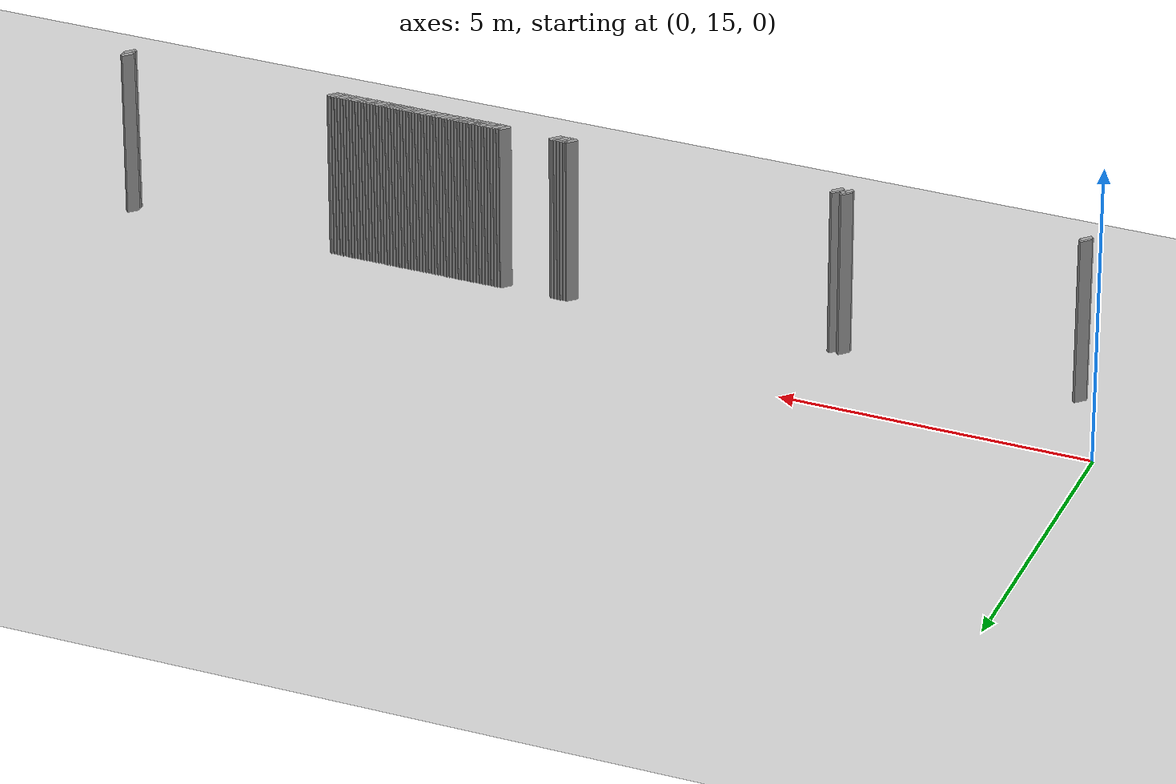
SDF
<sdf version="1.5">
 <world name="default">
  <include><uri>model://ground_plane</uri></include>
  <include><uri>model://sun</uri></include>
  <model name="grey_wall_1183">
   <static>1</static>
   <link name="link">
    <pose>9.0 13.450000000000001  1.4 0 0 -0.7853981633974483</pose>
    <collision name="collision">
     <geometry><box><size>0.07071067811865576 .2  2.8</size></box></geometry>
    </collision>
    <visual name="visual">
     <cast_shadows>0</cast_shadows>
     <geometry><box><size>0.07071067811865576 .2  2.8</size></box></geometry>
     <material>
      <script>
       <uri>model://grey_wall/materials/scripts</uri>
       <uri>model://grey_wall/materials/textures</uri>
       <name>vrc/grey_wall</name>
      </script>
     </material>
    </visual>
   </link>
  </model>
  <model name="grey_wall_1184">
   <static>1</static>
   <link name="link">
    <pose>9.05 13.450000000000001  1.4 0 0 -0.7853981633974483</pose>
    <collision name="collision">
     <geometry><box><size>0.07071067811865576 .2  2.8</size></box></geometry>
    </collision>
    <visual name="visual">
     <cast_shadows>0</cast_shadows>
     <geometry><box><size>0.07071067811865576 .2  2.8</size></box></geometry>
     <material>
      <script>
       <uri>model://grey_wall/materials/scripts</uri>
       <uri>model://grey_wall/materials/textures</uri>
       <name>vrc/grey_wall</name>
      </script>
     </material>
    </visual>
   </link>
  </model>
  <model name="grey_wall_1185">
   <static>1</static>
   <link name="link">
    <pose>9.1 13.450000000000001  1.4 0 0 -0.7853981633974483</pose>
    <collision name="collision">
     <geometry><box><size>0.07071067811865576 .2  2.8</size></box></geometry>
    </collision>
    <visual name="visual">
     <cast_shadows>0</cast_shadows>
     <geometry><box><size>0.07071067811865576 .2  2.8</size></box></geometry>
     <material>
      <script>
       <uri>model://grey_wall/materials/scripts</uri>
       <uri>model://grey_wall/materials/textures</uri>
       <name>vrc/grey_wall</name>
      </script>
     </material>
    </visual>
   </link>
  </model>
  <model name="grey_wall_1186">
   <static>1</static>
   <link name="link">
    <pose>9.15 13.450000000000001  1.4 0 0 -0.7853981633974483</pose>
    <collision name="collision">
     <geometry><box><size>0.07071067811865576 .2  2.8</size></box></geometry>
    </collision>
    <visual name="visual">
     <cast_shadows>0</cast_shadows>
     <geometry><box><size>0.07071067811865576 .2  2.8</size></box></geometry>
     <material>
      <script>
       <uri>model://grey_wall/materials/scripts</uri>
       <uri>model://grey_wall/materials/textures</uri>
       <name>vrc/grey_wall</name>
      </script>
     </material>
    </visual>
   </link>
  </model>
  <model name="grey_wall_1187">
   <static>1</static>
   <link name="link">
    <pose>9.200000000000001 13.450000000000001  1.4 0 0 -0.7853981633974483</pose>
    <collision name="collision">
     <geometry><box><size>0.07071067811865576 .2  2.8</size></box></geometry>
    </collision>
    <visual name="visual">
     <cast_shadows>0</cast_shadows>
     <geometry><box><size>0.07071067811865576 .2  2.8</size></box></geometry>
     <material>
      <script>
       <uri>model://grey_wall/materials/scripts</uri>
       <uri>model://grey_wall/materials/textures</uri>
       <name>vrc/grey_wall</name>
      </script>
     </material>
    </visual>
   </link>
  </model>
  <model name="grey_wall_1188">
   <static>1</static>
   <link name="link">
    <pose>9.25 13.450000000000001  1.4 0 0 -0.7853981633974483</pose>
    <collision name="collision">
     <geometry><box><size>0.07071067811865576 .2  2.8</size></box></geometry>
    </collision>
    <visual name="visual">
     <cast_shadows>0</cast_shadows>
     <geometry><box><size>0.07071067811865576 .2  2.8</size></box></geometry>
     <material>
      <script>
       <uri>model://grey_wall/materials/scripts</uri>
       <uri>model://grey_wall/materials/textures</uri>
       <name>vrc/grey_wall</name>
      </script>
     </material>
    </visual>
   </link>
  </model>
  <model name="grey_wall_1189">
   <static>1</static>
   <link name="link">
    <pose>10.100000000000001 13.450000000000001  1.4 0 0 -0.7853981633974483</pose>
    <collision name="collision">
     <geometry><box><size>0.07071067811865576 .2  2.8</size></box></geometry>
    </collision>
    <visual name="visual">
     <cast_shadows>0</cast_shadows>
     <geometry><box><size>0.07071067811865576 .2  2.8</size></box></geometry>
     <material>
      <script>
       <uri>model://grey_wall/materials/scripts</uri>
       <uri>model://grey_wall/materials/textures</uri>
       <name>vrc/grey_wall</name>
      </script>
     </material>
    </visual>
   </link>
  </model>
  <model name="grey_wall_1190">
   <static>1</static>
   <link name="link">
    <pose>10.15 13.450000000000001  1.4 0 0 -0.7853981633974483</pose>
    <collision name="collision">
     <geometry><box><size>0.07071067811865576 .2  2.8</size></box></geometry>
    </collision>
    <visual name="visual">
     <cast_shadows>0</cast_shadows>
     <geometry><box><size>0.07071067811865576 .2  2.8</size></box></geometry>
     <material>
      <script>
       <uri>model://grey_wall/materials/scripts</uri>
       <uri>model://grey_wall/materials/textures</uri>
       <name>vrc/grey_wall</name>
      </script>
     </material>
    </visual>
   </link>
  </model>
  <model name="grey_wall_1191">
   <static>1</static>
   <link name="link">
    <pose>10.200000000000001 13.450000000000001  1.4 0 0 -0.7853981633974483</pose>
    <collision name="collision">
     <geometry><box><size>0.07071067811865576 .2  2.8</size></box></geometry>
    </collision>
    <visual name="visual">
     <cast_shadows>0</cast_shadows>
     <geometry><box><size>0.07071067811865576 .2  2.8</size></box></geometry>
     <material>
      <script>
       <uri>model://grey_wall/materials/scripts</uri>
       <uri>model://grey_wall/materials/textures</uri>
       <name>vrc/grey_wall</name>
      </script>
     </material>
    </visual>
   </link>
  </model>
  <model name="grey_wall_1192">
   <static>1</static>
   <link name="link">
    <pose>10.25 13.450000000000001  1.4 0 0 -0.7853981633974483</pose>
    <collision name="collision">
     <geometry><box><size>0.07071067811865576 .2  2.8</size></box></geometry>
    </collision>
    <visual name="visual">
     <cast_shadows>0</cast_shadows>
     <geometry><box><size>0.07071067811865576 .2  2.8</size></box></geometry>
     <material>
      <script>
       <uri>model://grey_wall/materials/scripts</uri>
       <uri>model://grey_wall/materials/textures</uri>
       <name>vrc/grey_wall</name>
      </script>
     </material>
    </visual>
   </link>
  </model>
  <model name="grey_wall_1193">
   <static>1</static>
   <link name="link">
    <pose>10.3 13.450000000000001  1.4 0 0 -0.7853981633974483</pose>
    <collision name="collision">
     <geometry><box><size>0.07071067811865576 .2  2.8</size></box></geometry>
    </collision>
    <visual name="visual">
     <cast_shadows>0</cast_shadows>
     <geometry><box><size>0.07071067811865576 .2  2.8</size></box></geometry>
     <material>
      <script>
       <uri>model://grey_wall/materials/scripts</uri>
       <uri>model://grey_wall/materials/textures</uri>
       <name>vrc/grey_wall</name>
      </script>
     </material>
    </visual>
   </link>
  </model>
  <model name="grey_wall_1194">
   <static>1</static>
   <link name="link">
    <pose>10.350000000000001 13.450000000000001  1.4 0 0 -0.7853981633974483</pose>
    <collision name="collision">
     <geometry><box><size>0.07071067811865576 .2  2.8</size></box></geometry>
    </collision>
    <visual name="visual">
     <cast_shadows>0</cast_shadows>
     <geometry><box><size>0.07071067811865576 .2  2.8</size></box></geometry>
     <material>
      <script>
       <uri>model://grey_wall/materials/scripts</uri>
       <uri>model://grey_wall/materials/textures</uri>
       <name>vrc/grey_wall</name>
      </script>
     </material>
    </visual>
   </link>
  </model>
  <model name="grey_wall_1195">
   <static>1</static>
   <link name="link">
    <pose>10.4 13.450000000000001  1.4 0 0 -0.7853981633974483</pose>
    <collision name="collision">
     <geometry><box><size>0.07071067811865576 .2  2.8</size></box></geometry>
    </collision>
    <visual name="visual">
     <cast_shadows>0</cast_shadows>
     <geometry><box><size>0.07071067811865576 .2  2.8</size></box></geometry>
     <material>
      <script>
       <uri>model://grey_wall/materials/scripts</uri>
       <uri>model://grey_wall/materials/textures</uri>
       <name>vrc/grey_wall</name>
      </script>
     </material>
    </visual>
   </link>
  </model>
  <model name="grey_wall_1196">
   <static>1</static>
   <link name="link">
    <pose>10.450000000000001 13.450000000000001  1.4 0 0 -0.7853981633974483</pose>
    <collision name="collision">
     <geometry><box><size>0.07071067811865576 .2  2.8</size></box></geometry>
    </collision>
    <visual name="visual">
     <cast_shadows>0</cast_shadows>
     <geometry><box><size>0.07071067811865576 .2  2.8</size></box></geometry>
     <material>
      <script>
       <uri>model://grey_wall/materials/scripts</uri>
       <uri>model://grey_wall/materials/textures</uri>
       <name>vrc/grey_wall</name>
      </script>
     </material>
    </visual>
   </link>
  </model>
  <model name="grey_wall_1197">
   <static>1</static>
   <link name="link">
    <pose>10.5 13.450000000000001  1.4 0 0 -0.7853981633974483</pose>
    <collision name="collision">
     <geometry><box><size>0.07071067811865576 .2  2.8</size></box></geometry>
    </collision>
    <visual name="visual">
     <cast_shadows>0</cast_shadows>
     <geometry><box><size>0.07071067811865576 .2  2.8</size></box></geometry>
     <material>
      <script>
       <uri>model://grey_wall/materials/scripts</uri>
       <uri>model://grey_wall/materials/textures</uri>
       <name>vrc/grey_wall</name>
      </script>
     </material>
    </visual>
   </link>
  </model>
  <model name="grey_wall_1198">
   <static>1</static>
   <link name="link">
    <pose>10.55 13.450000000000001  1.4 0 0 -0.7853981633974483</pose>
    <collision name="collision">
     <geometry><box><size>0.07071067811865576 .2  2.8</size></box></geometry>
    </collision>
    <visual name="visual">
     <cast_shadows>0</cast_shadows>
     <geometry><box><size>0.07071067811865576 .2  2.8</size></box></geometry>
     <material>
      <script>
       <uri>model://grey_wall/materials/scripts</uri>
       <uri>model://grey_wall/materials/textures</uri>
       <name>vrc/grey_wall</name>
      </script>
     </material>
    </visual>
   </link>
  </model>
  <model name="grey_wall_1199">
   <static>1</static>
   <link name="link">
    <pose>10.600000000000001 13.450000000000001  1.4 0 0 -0.7853981633974483</pose>
    <collision name="collision">
     <geometry><box><size>0.07071067811865576 .2  2.8</size></box></geometry>
    </collision>
    <visual name="visual">
     <cast_shadows>0</cast_shadows>
     <geometry><box><size>0.07071067811865576 .2  2.8</size></box></geometry>
     <material>
      <script>
       <uri>model://grey_wall/materials/scripts</uri>
       <uri>model://grey_wall/materials/textures</uri>
       <name>vrc/grey_wall</name>
      </script>
     </material>
    </visual>
   </link>
  </model>
  <model name="grey_wall_1200">
   <static>1</static>
   <link name="link">
    <pose>10.65 13.450000000000001  1.4 0 0 -0.7853981633974483</pose>
    <collision name="collision">
     <geometry><box><size>0.07071067811865576 .2  2.8</size></box></geometry>
    </collision>
    <visual name="visual">
     <cast_shadows>0</cast_shadows>
     <geometry><box><size>0.07071067811865576 .2  2.8</size></box></geometry>
     <material>
      <script>
       <uri>model://grey_wall/materials/scripts</uri>
       <uri>model://grey_wall/materials/textures</uri>
       <name>vrc/grey_wall</name>
      </script>
     </material>
    </visual>
   </link>
  </model>
  <model name="grey_wall_1201">
   <static>1</static>
   <link name="link">
    <pose>10.700000000000001 13.450000000000001  1.4 0 0 -0.7853981633974483</pose>
    <collision name="collision">
     <geometry><box><size>0.07071067811865576 .2  2.8</size></box></geometry>
    </collision>
    <visual name="visual">
     <cast_shadows>0</cast_shadows>
     <geometry><box><size>0.07071067811865576 .2  2.8</size></box></geometry>
     <material>
      <script>
       <uri>model://grey_wall/materials/scripts</uri>
       <uri>model://grey_wall/materials/textures</uri>
       <name>vrc/grey_wall</name>
      </script>
     </material>
    </visual>
   </link>
  </model>
  <model name="grey_wall_1202">
   <static>1</static>
   <link name="link">
    <pose>10.75 13.450000000000001  1.4 0 0 -0.7853981633974483</pose>
    <collision name="collision">
     <geometry><box><size>0.07071067811865576 .2  2.8</size></box></geometry>
    </collision>
    <visual name="visual">
     <cast_shadows>0</cast_shadows>
     <geometry><box><size>0.07071067811865576 .2  2.8</size></box></geometry>
     <material>
      <script>
       <uri>model://grey_wall/materials/scripts</uri>
       <uri>model://grey_wall/materials/textures</uri>
       <name>vrc/grey_wall</name>
      </script>
     </material>
    </visual>
   </link>
  </model>
  <model name="grey_wall_1203">
   <static>1</static>
   <link name="link">
    <pose>10.8 13.450000000000001  1.4 0 0 -0.7853981633974483</pose>
    <collision name="collision">
     <geometry><box><size>0.07071067811865576 .2  2.8</size></box></geometry>
    </collision>
    <visual name="visual">
     <cast_shadows>0</cast_shadows>
     <geometry><box><size>0.07071067811865576 .2  2.8</size></box></geometry>
     <material>
      <script>
       <uri>model://grey_wall/materials/scripts</uri>
       <uri>model://grey_wall/materials/textures</uri>
       <name>vrc/grey_wall</name>
      </script>
     </material>
    </visual>
   </link>
  </model>
  <model name="grey_wall_1204">
   <static>1</static>
   <link name="link">
    <pose>10.850000000000001 13.450000000000001  1.4 0 0 -0.7853981633974483</pose>
    <collision name="collision">
     <geometry><box><size>0.07071067811865576 .2  2.8</size></box></geometry>
    </collision>
    <visual name="visual">
     <cast_shadows>0</cast_shadows>
     <geometry><box><size>0.07071067811865576 .2  2.8</size></box></geometry>
     <material>
      <script>
       <uri>model://grey_wall/materials/scripts</uri>
       <uri>model://grey_wall/materials/textures</uri>
       <name>vrc/grey_wall</name>
      </script>
     </material>
    </visual>
   </link>
  </model>
  <model name="grey_wall_1205">
   <static>1</static>
   <link name="link">
    <pose>10.9 13.450000000000001  1.4 0 0 -0.7853981633974483</pose>
    <collision name="collision">
     <geometry><box><size>0.07071067811865576 .2  2.8</size></box></geometry>
    </collision>
    <visual name="visual">
     <cast_shadows>0</cast_shadows>
     <geometry><box><size>0.07071067811865576 .2  2.8</size></box></geometry>
     <material>
      <script>
       <uri>model://grey_wall/materials/scripts</uri>
       <uri>model://grey_wall/materials/textures</uri>
       <name>vrc/grey_wall</name>
      </script>
     </material>
    </visual>
   </link>
  </model>
  <model name="grey_wall_1206">
   <static>1</static>
   <link name="link">
    <pose>10.950000000000001 13.450000000000001  1.4 0 0 -0.7853981633974483</pose>
    <collision name="collision">
     <geometry><box><size>0.07071067811865576 .2  2.8</size></box></geometry>
    </collision>
    <visual name="visual">
     <cast_shadows>0</cast_shadows>
     <geometry><box><size>0.07071067811865576 .2  2.8</size></box></geometry>
     <material>
      <script>
       <uri>model://grey_wall/materials/scripts</uri>
       <uri>model://grey_wall/materials/textures</uri>
       <name>vrc/grey_wall</name>
      </script>
     </material>
    </visual>
   </link>
  </model>
  <model name="grey_wall_1207">
   <static>1</static>
   <link name="link">
    <pose>11.0 13.450000000000001  1.4 0 0 -0.7853981633974483</pose>
    <collision name="collision">
     <geometry><box><size>0.07071067811865576 .2  2.8</size></box></geometry>
    </collision>
    <visual name="visual">
     <cast_shadows>0</cast_shadows>
     <geometry><box><size>0.07071067811865576 .2  2.8</size></box></geometry>
     <material>
      <script>
       <uri>model://grey_wall/materials/scripts</uri>
       <uri>model://grey_wall/materials/textures</uri>
       <name>vrc/grey_wall</name>
      </script>
     </material>
    </visual>
   </link>
  </model>
  <model name="grey_wall_1208">
   <static>1</static>
   <link name="link">
    <pose>11.05 13.450000000000001  1.4 0 0 -0.7853981633974483</pose>
    <collision name="collision">
     <geometry><box><size>0.07071067811865576 .2  2.8</size></box></geometry>
    </collision>
    <visual name="visual">
     <cast_shadows>0</cast_shadows>
     <geometry><box><size>0.07071067811865576 .2  2.8</size></box></geometry>
     <material>
      <script>
       <uri>model://grey_wall/materials/scripts</uri>
       <uri>model://grey_wall/materials/textures</uri>
       <name>vrc/grey_wall</name>
      </script>
     </material>
    </visual>
   </link>
  </model>
  <model name="grey_wall_1209">
   <static>1</static>
   <link name="link">
    <pose>11.100000000000001 13.450000000000001  1.4 0 0 -0.7853981633974483</pose>
    <collision name="collision">
     <geometry><box><size>0.07071067811865576 .2  2.8</size></box></geometry>
    </collision>
    <visual name="visual">
     <cast_shadows>0</cast_shadows>
     <geometry><box><size>0.07071067811865576 .2  2.8</size></box></geometry>
     <material>
      <script>
       <uri>model://grey_wall/materials/scripts</uri>
       <uri>model://grey_wall/materials/textures</uri>
       <name>vrc/grey_wall</name>
      </script>
     </material>
    </visual>
   </link>
  </model>
  <model name="grey_wall_1210">
   <static>1</static>
   <link name="link">
    <pose>11.15 13.450000000000001  1.4 0 0 -0.7853981633974483</pose>
    <collision name="collision">
     <geometry><box><size>0.07071067811865576 .2  2.8</size></box></geometry>
    </collision>
    <visual name="visual">
     <cast_shadows>0</cast_shadows>
     <geometry><box><size>0.07071067811865576 .2  2.8</size></box></geometry>
     <material>
      <script>
       <uri>model://grey_wall/materials/scripts</uri>
       <uri>model://grey_wall/materials/textures</uri>
       <name>vrc/grey_wall</name>
      </script>
     </material>
    </visual>
   </link>
  </model>
  <model name="grey_wall_1211">
   <static>1</static>
   <link name="link">
    <pose>11.200000000000001 13.450000000000001  1.4 0 0 -0.7853981633974483</pose>
    <collision name="collision">
     <geometry><box><size>0.07071067811865576 .2  2.8</size></box></geometry>
    </collision>
    <visual name="visual">
     <cast_shadows>0</cast_shadows>
     <geometry><box><size>0.07071067811865576 .2  2.8</size></box></geometry>
     <material>
      <script>
       <uri>model://grey_wall/materials/scripts</uri>
       <uri>model://grey_wall/materials/textures</uri>
       <name>vrc/grey_wall</name>
      </script>
     </material>
    </visual>
   </link>
  </model>
  <model name="grey_wall_1212">
   <static>1</static>
   <link name="link">
    <pose>11.25 13.450000000000001  1.4 0 0 -0.7853981633974483</pose>
    <collision name="collision">
     <geometry><box><size>0.07071067811865576 .2  2.8</size></box></geometry>
    </collision>
    <visual name="visual">
     <cast_shadows>0</cast_shadows>
     <geometry><box><size>0.07071067811865576 .2  2.8</size></box></geometry>
     <material>
      <script>
       <uri>model://grey_wall/materials/scripts</uri>
       <uri>model://grey_wall/materials/textures</uri>
       <name>vrc/grey_wall</name>
      </script>
     </material>
    </visual>
   </link>
  </model>
  <model name="grey_wall_1213">
   <static>1</static>
   <link name="link">
    <pose>11.3 13.450000000000001  1.4 0 0 -0.7853981633974483</pose>
    <collision name="collision">
     <geometry><box><size>0.07071067811865576 .2  2.8</size></box></geometry>
    </collision>
    <visual name="visual">
     <cast_shadows>0</cast_shadows>
     <geometry><box><size>0.07071067811865576 .2  2.8</size></box></geometry>
     <material>
      <script>
       <uri>model://grey_wall/materials/scripts</uri>
       <uri>model://grey_wall/materials/textures</uri>
       <name>vrc/grey_wall</name>
      </script>
     </material>
    </visual>
   </link>
  </model>
  <model name="grey_wall_1214">
   <static>1</static>
   <link name="link">
    <pose>11.350000000000001 13.450000000000001  1.4 0 0 -0.7853981633974483</pose>
    <collision name="collision">
     <geometry><box><size>0.07071067811865576 .2  2.8</size></box></geometry>
    </collision>
    <visual name="visual">
     <cast_shadows>0</cast_shadows>
     <geometry><box><size>0.07071067811865576 .2  2.8</size></box></geometry>
     <material>
      <script>
       <uri>model://grey_wall/materials/scripts</uri>
       <uri>model://grey_wall/materials/textures</uri>
       <name>vrc/grey_wall</name>
      </script>
     </material>
    </visual>
   </link>
  </model>
  <model name="grey_wall_1215">
   <static>1</static>
   <link name="link">
    <pose>11.4 13.450000000000001  1.4 0 0 -0.7853981633974483</pose>
    <collision name="collision">
     <geometry><box><size>0.07071067811865576 .2  2.8</size></box></geometry>
    </collision>
    <visual name="visual">
     <cast_shadows>0</cast_shadows>
     <geometry><box><size>0.07071067811865576 .2  2.8</size></box></geometry>
     <material>
      <script>
       <uri>model://grey_wall/materials/scripts</uri>
       <uri>model://grey_wall/materials/textures</uri>
       <name>vrc/grey_wall</name>
      </script>
     </material>
    </visual>
   </link>
  </model>
  <model name="grey_wall_1216">
   <static>1</static>
   <link name="link">
    <pose>11.450000000000001 13.450000000000001  1.4 0 0 -0.7853981633974483</pose>
    <collision name="collision">
     <geometry><box><size>0.07071067811865576 .2  2.8</size></box></geometry>
    </collision>
    <visual name="visual">
     <cast_shadows>0</cast_shadows>
     <geometry><box><size>0.07071067811865576 .2  2.8</size></box></geometry>
     <material>
      <script>
       <uri>model://grey_wall/materials/scripts</uri>
       <uri>model://grey_wall/materials/textures</uri>
       <name>vrc/grey_wall</name>
      </script>
     </material>
    </visual>
   </link>
  </model>
  <model name="grey_wall_1217">
   <static>1</static>
   <link name="link">
    <pose>11.5 13.450000000000001  1.4 0 0 -0.7853981633974483</pose>
    <collision name="collision">
     <geometry><box><size>0.07071067811865576 .2  2.8</size></box></geometry>
    </collision>
    <visual name="visual">
     <cast_shadows>0</cast_shadows>
     <geometry><box><size>0.07071067811865576 .2  2.8</size></box></geometry>
     <material>
      <script>
       <uri>model://grey_wall/materials/scripts</uri>
       <uri>model://grey_wall/materials/textures</uri>
       <name>vrc/grey_wall</name>
      </script>
     </material>
    </visual>
   </link>
  </model>
  <model name="grey_wall_1218">
   <static>1</static>
   <link name="link">
    <pose>11.55 13.450000000000001  1.4 0 0 -0.7853981633974483</pose>
    <collision name="collision">
     <geometry><box><size>0.07071067811865576 .2  2.8</size></box></geometry>
    </collision>
    <visual name="visual">
     <cast_shadows>0</cast_shadows>
     <geometry><box><size>0.07071067811865576 .2  2.8</size></box></geometry>
     <material>
      <script>
       <uri>model://grey_wall/materials/scripts</uri>
       <uri>model://grey_wall/materials/textures</uri>
       <name>vrc/grey_wall</name>
      </script>
     </material>
    </visual>
   </link>
  </model>
  <model name="grey_wall_1219">
   <static>1</static>
   <link name="link">
    <pose>11.600000000000001 13.450000000000001  1.4 0 0 -0.7853981633974483</pose>
    <collision name="collision">
     <geometry><box><size>0.07071067811865576 .2  2.8</size></box></geometry>
    </collision>
    <visual name="visual">
     <cast_shadows>0</cast_shadows>
     <geometry><box><size>0.07071067811865576 .2  2.8</size></box></geometry>
     <material>
      <script>
       <uri>model://grey_wall/materials/scripts</uri>
       <uri>model://grey_wall/materials/textures</uri>
       <name>vrc/grey_wall</name>
      </script>
     </material>
    </visual>
   </link>
  </model>
  <model name="grey_wall_1220">
   <static>1</static>
   <link name="link">
    <pose>11.65 13.450000000000001  1.4 0 0 -0.7853981633974483</pose>
    <collision name="collision">
     <geometry><box><size>0.07071067811865576 .2  2.8</size></box></geometry>
    </collision>
    <visual name="visual">
     <cast_shadows>0</cast_shadows>
     <geometry><box><size>0.07071067811865576 .2  2.8</size></box></geometry>
     <material>
      <script>
       <uri>model://grey_wall/materials/scripts</uri>
       <uri>model://grey_wall/materials/textures</uri>
       <name>vrc/grey_wall</name>
      </script>
     </material>
    </visual>
   </link>
  </model>
  <model name="grey_wall_1221">
   <static>1</static>
   <link name="link">
    <pose>11.700000000000001 13.450000000000001  1.4 0 0 -0.7853981633974483</pose>
    <collision name="collision">
     <geometry><box><size>0.07071067811865576 .2  2.8</size></box></geometry>
    </collision>
    <visual name="visual">
     <cast_shadows>0</cast_shadows>
     <geometry><box><size>0.07071067811865576 .2  2.8</size></box></geometry>
     <material>
      <script>
       <uri>model://grey_wall/materials/scripts</uri>
       <uri>model://grey_wall/materials/textures</uri>
       <name>vrc/grey_wall</name>
      </script>
     </material>
    </visual>
   </link>
  </model>
  <model name="grey_wall_1222">
   <static>1</static>
   <link name="link">
    <pose>11.75 13.450000000000001  1.4 0 0 -0.7853981633974483</pose>
    <collision name="collision">
     <geometry><box><size>0.07071067811865576 .2  2.8</size></box></geometry>
    </collision>
    <visual name="visual">
     <cast_shadows>0</cast_shadows>
     <geometry><box><size>0.07071067811865576 .2  2.8</size></box></geometry>
     <material>
      <script>
       <uri>model://grey_wall/materials/scripts</uri>
       <uri>model://grey_wall/materials/textures</uri>
       <name>vrc/grey_wall</name>
      </script>
     </material>
    </visual>
   </link>
  </model>
  <model name="grey_wall_1223">
   <static>1</static>
   <link name="link">
    <pose>11.8 13.450000000000001  1.4 0 0 -0.7853981633974483</pose>
    <collision name="collision">
     <geometry><box><size>0.07071067811865576 .2  2.8</size></box></geometry>
    </collision>
    <visual name="visual">
     <cast_shadows>0</cast_shadows>
     <geometry><box><size>0.07071067811865576 .2  2.8</size></box></geometry>
     <material>
      <script>
       <uri>model://grey_wall/materials/scripts</uri>
       <uri>model://grey_wall/materials/textures</uri>
       <name>vrc/grey_wall</name>
      </script>
     </material>
    </visual>
   </link>
  </model>
  <model name="grey_wall_1224">
   <static>1</static>
   <link name="link">
    <pose>11.850000000000001 13.450000000000001  1.4 0 0 -0.7853981633974483</pose>
    <collision name="collision">
     <geometry><box><size>0.07071067811865576 .2  2.8</size></box></geometry>
    </collision>
    <visual name="visual">
     <cast_shadows>0</cast_shadows>
     <geometry><box><size>0.07071067811865576 .2  2.8</size></box></geometry>
     <material>
      <script>
       <uri>model://grey_wall/materials/scripts</uri>
       <uri>model://grey_wall/materials/textures</uri>
       <name>vrc/grey_wall</name>
      </script>
     </material>
    </visual>
   </link>
  </model>
  <model name="grey_wall_1225">
   <static>1</static>
   <link name="link">
    <pose>11.9 13.450000000000001  1.4 0 0 -0.7853981633974483</pose>
    <collision name="collision">
     <geometry><box><size>0.07071067811865576 .2  2.8</size></box></geometry>
    </collision>
    <visual name="visual">
     <cast_shadows>0</cast_shadows>
     <geometry><box><size>0.07071067811865576 .2  2.8</size></box></geometry>
     <material>
      <script>
       <uri>model://grey_wall/materials/scripts</uri>
       <uri>model://grey_wall/materials/textures</uri>
       <name>vrc/grey_wall</name>
      </script>
     </material>
    </visual>
   </link>
  </model>
  <model name="grey_wall_1226">
   <static>1</static>
   <link name="link">
    <pose>11.950000000000001 13.450000000000001  1.4 0 0 -0.7853981633974483</pose>
    <collision name="collision">
     <geometry><box><size>0.07071067811865576 .2  2.8</size></box></geometry>
    </collision>
    <visual name="visual">
     <cast_shadows>0</cast_shadows>
     <geometry><box><size>0.07071067811865576 .2  2.8</size></box></geometry>
     <material>
      <script>
       <uri>model://grey_wall/materials/scripts</uri>
       <uri>model://grey_wall/materials/textures</uri>
       <name>vrc/grey_wall</name>
      </script>
     </material>
    </visual>
   </link>
  </model>
  <model name="grey_wall_1227">
   <static>1</static>
   <link name="link">
    <pose>12.0 13.450000000000001  1.4 0 0 -0.7853981633974483</pose>
    <collision name="collision">
     <geometry><box><size>0.07071067811865576 .2  2.8</size></box></geometry>
    </collision>
    <visual name="visual">
     <cast_shadows>0</cast_shadows>
     <geometry><box><size>0.07071067811865576 .2  2.8</size></box></geometry>
     <material>
      <script>
       <uri>model://grey_wall/materials/scripts</uri>
       <uri>model://grey_wall/materials/textures</uri>
       <name>vrc/grey_wall</name>
      </script>
     </material>
    </visual>
   </link>
  </model>
  <model name="grey_wall_1228">
   <static>1</static>
   <link name="link">
    <pose>12.05 13.450000000000001  1.4 0 0 -0.7853981633974483</pose>
    <collision name="collision">
     <geometry><box><size>0.07071067811865576 .2  2.8</size></box></geometry>
    </collision>
    <visual name="visual">
     <cast_shadows>0</cast_shadows>
     <geometry><box><size>0.07071067811865576 .2  2.8</size></box></geometry>
     <material>
      <script>
       <uri>model://grey_wall/materials/scripts</uri>
       <uri>model://grey_wall/materials/textures</uri>
       <name>vrc/grey_wall</name>
      </script>
     </material>
    </visual>
   </link>
  </model>
  <model name="grey_wall_1229">
   <static>1</static>
   <link name="link">
    <pose>12.100000000000001 13.450000000000001  1.4 0 0 -0.7853981633974483</pose>
    <collision name="collision">
     <geometry><box><size>0.07071067811865576 .2  2.8</size></box></geometry>
    </collision>
    <visual name="visual">
     <cast_shadows>0</cast_shadows>
     <geometry><box><size>0.07071067811865576 .2  2.8</size></box></geometry>
     <material>
      <script>
       <uri>model://grey_wall/materials/scripts</uri>
       <uri>model://grey_wall/materials/textures</uri>
       <name>vrc/grey_wall</name>
      </script>
     </material>
    </visual>
   </link>
  </model>
  <model name="grey_wall_1230">
   <static>1</static>
   <link name="link">
    <pose>12.15 13.450000000000001  1.4 0 0 -0.7853981633974483</pose>
    <collision name="collision">
     <geometry><box><size>0.07071067811865576 .2  2.8</size></box></geometry>
    </collision>
    <visual name="visual">
     <cast_shadows>0</cast_shadows>
     <geometry><box><size>0.07071067811865576 .2  2.8</size></box></geometry>
     <material>
      <script>
       <uri>model://grey_wall/materials/scripts</uri>
       <uri>model://grey_wall/materials/textures</uri>
       <name>vrc/grey_wall</name>
      </script>
     </material>
    </visual>
   </link>
  </model>
  <model name="grey_wall_1231">
   <static>1</static>
   <link name="link">
    <pose>12.200000000000001 13.450000000000001  1.4 0 0 -0.7853981633974483</pose>
    <collision name="collision">
     <geometry><box><size>0.07071067811865576 .2  2.8</size></box></geometry>
    </collision>
    <visual name="visual">
     <cast_shadows>0</cast_shadows>
     <geometry><box><size>0.07071067811865576 .2  2.8</size></box></geometry>
     <material>
      <script>
       <uri>model://grey_wall/materials/scripts</uri>
       <uri>model://grey_wall/materials/textures</uri>
       <name>vrc/grey_wall</name>
      </script>
     </material>
    </visual>
   </link>
  </model>
  <model name="grey_wall_1232">
   <static>1</static>
   <link name="link">
    <pose>12.25 13.450000000000001  1.4 0 0 -0.7853981633974483</pose>
    <collision name="collision">
     <geometry><box><size>0.07071067811865576 .2  2.8</size></box></geometry>
    </collision>
    <visual name="visual">
     <cast_shadows>0</cast_shadows>
     <geometry><box><size>0.07071067811865576 .2  2.8</size></box></geometry>
     <material>
      <script>
       <uri>model://grey_wall/materials/scripts</uri>
       <uri>model://grey_wall/materials/textures</uri>
       <name>vrc/grey_wall</name>
      </script>
     </material>
    </visual>
   </link>
  </model>
  <model name="grey_wall_1233">
   <static>1</static>
   <link name="link">
    <pose>12.3 13.450000000000001  1.4 0 0 -0.7853981633974483</pose>
    <collision name="collision">
     <geometry><box><size>0.07071067811865576 .2  2.8</size></box></geometry>
    </collision>
    <visual name="visual">
     <cast_shadows>0</cast_shadows>
     <geometry><box><size>0.07071067811865576 .2  2.8</size></box></geometry>
     <material>
      <script>
       <uri>model://grey_wall/materials/scripts</uri>
       <uri>model://grey_wall/materials/textures</uri>
       <name>vrc/grey_wall</name>
      </script>
     </material>
    </visual>
   </link>
  </model>
  <model name="grey_wall_1234">
   <static>1</static>
   <link name="link">
    <pose>12.350000000000001 13.450000000000001  1.4 0 0 -0.7853981633974483</pose>
    <collision name="collision">
     <geometry><box><size>0.07071067811865576 .2  2.8</size></box></geometry>
    </collision>
    <visual name="visual">
     <cast_shadows>0</cast_shadows>
     <geometry><box><size>0.07071067811865576 .2  2.8</size></box></geometry>
     <material>
      <script>
       <uri>model://grey_wall/materials/scripts</uri>
       <uri>model://grey_wall/materials/textures</uri>
       <name>vrc/grey_wall</name>
      </script>
     </material>
    </visual>
   </link>
  </model>
  <model name="grey_wall_1235">
   <static>1</static>
   <link name="link">
    <pose>12.4 13.450000000000001  1.4 0 0 -0.7853981633974483</pose>
    <collision name="collision">
     <geometry><box><size>0.07071067811865576 .2  2.8</size></box></geometry>
    </collision>
    <visual name="visual">
     <cast_shadows>0</cast_shadows>
     <geometry><box><size>0.07071067811865576 .2  2.8</size></box></geometry>
     <material>
      <script>
       <uri>model://grey_wall/materials/scripts</uri>
       <uri>model://grey_wall/materials/textures</uri>
       <name>vrc/grey_wall</name>
      </script>
     </material>
    </visual>
   </link>
  </model>
  <model name="grey_wall_1236">
   <static>1</static>
   <link name="link">
    <pose>12.450000000000001 13.450000000000001  1.4 0 0 -0.7853981633974483</pose>
    <collision name="collision">
     <geometry><box><size>0.07071067811865576 .2  2.8</size></box></geometry>
    </collision>
    <visual name="visual">
     <cast_shadows>0</cast_shadows>
     <geometry><box><size>0.07071067811865576 .2  2.8</size></box></geometry>
     <material>
      <script>
       <uri>model://grey_wall/materials/scripts</uri>
       <uri>model://grey_wall/materials/textures</uri>
       <name>vrc/grey_wall</name>
      </script>
     </material>
    </visual>
   </link>
  </model>
  <model name="grey_wall_1237">
   <static>1</static>
   <link name="link">
    <pose>12.5 13.450000000000001  1.4 0 0 -0.7853981633974483</pose>
    <collision name="collision">
     <geometry><box><size>0.07071067811865576 .2  2.8</size></box></geometry>
    </collision>
    <visual name="visual">
     <cast_shadows>0</cast_shadows>
     <geometry><box><size>0.07071067811865576 .2  2.8</size></box></geometry>
     <material>
      <script>
       <uri>model://grey_wall/materials/scripts</uri>
       <uri>model://grey_wall/materials/textures</uri>
       <name>vrc/grey_wall</name>
      </script>
     </material>
    </visual>
   </link>
  </model>
  <model name="grey_wall_1238">
   <static>1</static>
   <link name="link">
    <pose>12.55 13.450000000000001  1.4 0 0 -0.7853981633974483</pose>
    <collision name="collision">
     <geometry><box><size>0.07071067811865576 .2  2.8</size></box></geometry>
    </collision>
    <visual name="visual">
     <cast_shadows>0</cast_shadows>
     <geometry><box><size>0.07071067811865576 .2  2.8</size></box></geometry>
     <material>
      <script>
       <uri>model://grey_wall/materials/scripts</uri>
       <uri>model://grey_wall/materials/textures</uri>
       <name>vrc/grey_wall</name>
      </script>
     </material>
    </visual>
   </link>
  </model>
  <model name="grey_wall_1239">
   <static>1</static>
   <link name="link">
    <pose>12.600000000000001 13.450000000000001  1.4 0 0 -0.7853981633974483</pose>
    <collision name="collision">
     <geometry><box><size>0.07071067811865576 .2  2.8</size></box></geometry>
    </collision>
    <visual name="visual">
     <cast_shadows>0</cast_shadows>
     <geometry><box><size>0.07071067811865576 .2  2.8</size></box></geometry>
     <material>
      <script>
       <uri>model://grey_wall/materials/scripts</uri>
       <uri>model://grey_wall/materials/textures</uri>
       <name>vrc/grey_wall</name>
      </script>
     </material>
    </visual>
   </link>
  </model>
  <model name="grey_wall_1240">
   <static>1</static>
   <link name="link">
    <pose>12.65 13.450000000000001  1.4 0 0 -0.7853981633974483</pose>
    <collision name="collision">
     <geometry><box><size>0.07071067811865576 .2  2.8</size></box></geometry>
    </collision>
    <visual name="visual">
     <cast_shadows>0</cast_shadows>
     <geometry><box><size>0.07071067811865576 .2  2.8</size></box></geometry>
     <material>
      <script>
       <uri>model://grey_wall/materials/scripts</uri>
       <uri>model://grey_wall/materials/textures</uri>
       <name>vrc/grey_wall</name>
      </script>
     </material>
    </visual>
   </link>
  </model>
  <model name="grey_wall_1241">
   <static>1</static>
   <link name="link">
    <pose>12.700000000000001 13.450000000000001  1.4 0 0 -0.7853981633974483</pose>
    <collision name="collision">
     <geometry><box><size>0.07071067811865576 .2  2.8</size></box></geometry>
    </collision>
    <visual name="visual">
     <cast_shadows>0</cast_shadows>
     <geometry><box><size>0.07071067811865576 .2  2.8</size></box></geometry>
     <material>
      <script>
       <uri>model://grey_wall/materials/scripts</uri>
       <uri>model://grey_wall/materials/textures</uri>
       <name>vrc/grey_wall</name>
      </script>
     </material>
    </visual>
   </link>
  </model>
  <model name="grey_wall_1242">
   <static>1</static>
   <link name="link">
    <pose>12.75 13.450000000000001  1.4 0 0 -0.7853981633974483</pose>
    <collision name="collision">
     <geometry><box><size>0.07071067811865576 .2  2.8</size></box></geometry>
    </collision>
    <visual name="visual">
     <cast_shadows>0</cast_shadows>
     <geometry><box><size>0.07071067811865576 .2  2.8</size></box></geometry>
     <material>
      <script>
       <uri>model://grey_wall/materials/scripts</uri>
       <uri>model://grey_wall/materials/textures</uri>
       <name>vrc/grey_wall</name>
      </script>
     </material>
    </visual>
   </link>
  </model>
  <model name="grey_wall_1243">
   <static>1</static>
   <link name="link">
    <pose>12.8 13.450000000000001  1.4 0 0 -0.7853981633974483</pose>
    <collision name="collision">
     <geometry><box><size>0.07071067811865576 .2  2.8</size></box></geometry>
    </collision>
    <visual name="visual">
     <cast_shadows>0</cast_shadows>
     <geometry><box><size>0.07071067811865576 .2  2.8</size></box></geometry>
     <material>
      <script>
       <uri>model://grey_wall/materials/scripts</uri>
       <uri>model://grey_wall/materials/textures</uri>
       <name>vrc/grey_wall</name>
      </script>
     </material>
    </visual>
   </link>
  </model>
  <model name="grey_wall_1244">
   <static>1</static>
   <link name="link">
    <pose>12.850000000000001 13.450000000000001  1.4 0 0 -0.7853981633974483</pose>
    <collision name="collision">
     <geometry><box><size>0.07071067811865576 .2  2.8</size></box></geometry>
    </collision>
    <visual name="visual">
     <cast_shadows>0</cast_shadows>
     <geometry><box><size>0.07071067811865576 .2  2.8</size></box></geometry>
     <material>
      <script>
       <uri>model://grey_wall/materials/scripts</uri>
       <uri>model://grey_wall/materials/textures</uri>
       <name>vrc/grey_wall</name>
      </script>
     </material>
    </visual>
   </link>
  </model>
  <model name="grey_wall_1245">
   <static>1</static>
   <link name="link">
    <pose>12.9 13.450000000000001  1.4 0 0 -0.7853981633974483</pose>
    <collision name="collision">
     <geometry><box><size>0.07071067811865576 .2  2.8</size></box></geometry>
    </collision>
    <visual name="visual">
     <cast_shadows>0</cast_shadows>
     <geometry><box><size>0.07071067811865576 .2  2.8</size></box></geometry>
     <material>
      <script>
       <uri>model://grey_wall/materials/scripts</uri>
       <uri>model://grey_wall/materials/textures</uri>
       <name>vrc/grey_wall</name>
      </script>
     </material>
    </visual>
   </link>
  </model>
  <model name="grey_wall_1246">
   <static>1</static>
   <link name="link">
    <pose>12.950000000000001 13.450000000000001  1.4 0 0 -0.7853981633974483</pose>
    <collision name="collision">
     <geometry><box><size>0.07071067811865576 .2  2.8</size></box></geometry>
    </collision>
    <visual name="visual">
     <cast_shadows>0</cast_shadows>
     <geometry><box><size>0.07071067811865576 .2  2.8</size></box></geometry>
     <material>
      <script>
       <uri>model://grey_wall/materials/scripts</uri>
       <uri>model://grey_wall/materials/textures</uri>
       <name>vrc/grey_wall</name>
      </script>
     </material>
    </visual>
   </link>
  </model>
  <model name="grey_wall_1247">
   <static>1</static>
   <link name="link">
    <pose>16.45 13.450000000000001  1.4 0 0 -0.7853981633974838</pose>
    <collision name="collision">
     <geometry><box><size>0.07071067811865325 .2  2.8</size></box></geometry>
    </collision>
    <visual name="visual">
     <cast_shadows>0</cast_shadows>
     <geometry><box><size>0.07071067811865325 .2  2.8</size></box></geometry>
     <material>
      <script>
       <uri>model://grey_wall/materials/scripts</uri>
       <uri>model://grey_wall/materials/textures</uri>
       <name>vrc/grey_wall</name>
      </script>
     </material>
    </visual>
   </link>
  </model>
  <model name="grey_wall_1248">
   <static>1</static>
   <link name="link">
    <pose>0.75 13.4  1.4 0 0 -0.7853981633974549</pose>
    <collision name="collision">
     <geometry><box><size>0.07071067811865529 .2  2.8</size></box></geometry>
    </collision>
    <visual name="visual">
     <cast_shadows>0</cast_shadows>
     <geometry><box><size>0.07071067811865529 .2  2.8</size></box></geometry>
     <material>
      <script>
       <uri>model://grey_wall/materials/scripts</uri>
       <uri>model://grey_wall/materials/textures</uri>
       <name>vrc/grey_wall</name>
      </script>
     </material>
    </visual>
   </link>
  </model>
  <model name="grey_wall_1249">
   <static>1</static>
   <link name="link">
    <pose>4.55 13.4  1.4 0 0 -0.7853981633974483</pose>
    <collision name="collision">
     <geometry><box><size>0.07071067811865576 .2  2.8</size></box></geometry>
    </collision>
    <visual name="visual">
     <cast_shadows>0</cast_shadows>
     <geometry><box><size>0.07071067811865576 .2  2.8</size></box></geometry>
     <material>
      <script>
       <uri>model://grey_wall/materials/scripts</uri>
       <uri>model://grey_wall/materials/textures</uri>
       <name>vrc/grey_wall</name>
      </script>
     </material>
    </visual>
   </link>
  </model>
  <model name="grey_wall_1250">
   <static>1</static>
   <link name="link">
    <pose>4.7 13.4  1.4 0 0 -0.7853981633974483</pose>
    <collision name="collision">
     <geometry><box><size>0.07071067811865576 .2  2.8</size></box></geometry>
    </collision>
    <visual name="visual">
     <cast_shadows>0</cast_shadows>
     <geometry><box><size>0.07071067811865576 .2  2.8</size></box></geometry>
     <material>
      <script>
       <uri>model://grey_wall/materials/scripts</uri>
       <uri>model://grey_wall/materials/textures</uri>
       <name>vrc/grey_wall</name>
      </script>
     </material>
    </visual>
   </link>
  </model>
  <model name="grey_wall_1251">
   <static>1</static>
   <link name="link">
    <pose>16.45 13.4  1.4 0 0 -0.7853981633974838</pose>
    <collision name="collision">
     <geometry><box><size>0.07071067811865325 .2  2.8</size></box></geometry>
    </collision>
    <visual name="visual">
     <cast_shadows>0</cast_shadows>
     <geometry><box><size>0.07071067811865325 .2  2.8</size></box></geometry>
     <material>
      <script>
       <uri>model://grey_wall/materials/scripts</uri>
       <uri>model://grey_wall/materials/textures</uri>
       <name>vrc/grey_wall</name>
      </script>
     </material>
    </visual>
   </link>
  </model>
  <model name="grey_wall_1252">
   <static>1</static>
   <link name="link">
    <pose>0.75 13.350000000000001  1.4 0 0 -0.7853981633974549</pose>
    <collision name="collision">
     <geometry><box><size>0.07071067811865529 .2  2.8</size></box></geometry>
    </collision>
    <visual name="visual">
     <cast_shadows>0</cast_shadows>
     <geometry><box><size>0.07071067811865529 .2  2.8</size></box></geometry>
     <material>
      <script>
       <uri>model://grey_wall/materials/scripts</uri>
       <uri>model://grey_wall/materials/textures</uri>
       <name>vrc/grey_wall</name>
      </script>
     </material>
    </visual>
   </link>
  </model>
  <model name="grey_wall_1253">
   <static>1</static>
   <link name="link">
    <pose>4.55 13.350000000000001  1.4 0 0 -0.7853981633974483</pose>
    <collision name="collision">
     <geometry><box><size>0.07071067811865576 .2  2.8</size></box></geometry>
    </collision>
    <visual name="visual">
     <cast_shadows>0</cast_shadows>
     <geometry><box><size>0.07071067811865576 .2  2.8</size></box></geometry>
     <material>
      <script>
       <uri>model://grey_wall/materials/scripts</uri>
       <uri>model://grey_wall/materials/textures</uri>
       <name>vrc/grey_wall</name>
      </script>
     </material>
    </visual>
   </link>
  </model>
  <model name="grey_wall_1254">
   <static>1</static>
   <link name="link">
    <pose>4.7 13.350000000000001  1.4 0 0 -0.7853981633974483</pose>
    <collision name="collision">
     <geometry><box><size>0.07071067811865576 .2  2.8</size></box></geometry>
    </collision>
    <visual name="visual">
     <cast_shadows>0</cast_shadows>
     <geometry><box><size>0.07071067811865576 .2  2.8</size></box></geometry>
     <material>
      <script>
       <uri>model://grey_wall/materials/scripts</uri>
       <uri>model://grey_wall/materials/textures</uri>
       <name>vrc/grey_wall</name>
      </script>
     </material>
    </visual>
   </link>
  </model>
  <model name="grey_wall_1255">
   <static>1</static>
   <link name="link">
    <pose>16.45 13.350000000000001  1.4 0 0 -0.7853981633974838</pose>
    <collision name="collision">
     <geometry><box><size>0.07071067811865325 .2  2.8</size></box></geometry>
    </collision>
    <visual name="visual">
     <cast_shadows>0</cast_shadows>
     <geometry><box><size>0.07071067811865325 .2  2.8</size></box></geometry>
     <material>
      <script>
       <uri>model://grey_wall/materials/scripts</uri>
       <uri>model://grey_wall/materials/textures</uri>
       <name>vrc/grey_wall</name>
      </script>
     </material>
    </visual>
   </link>
  </model>
 </world>
</sdf>
